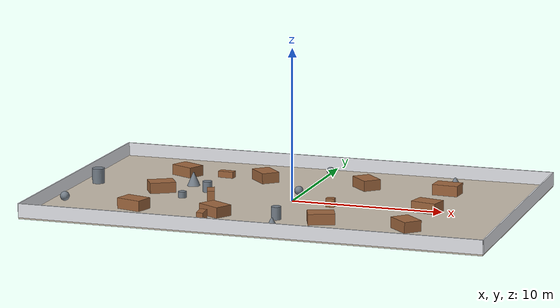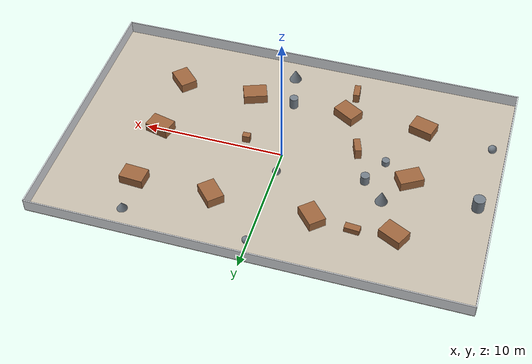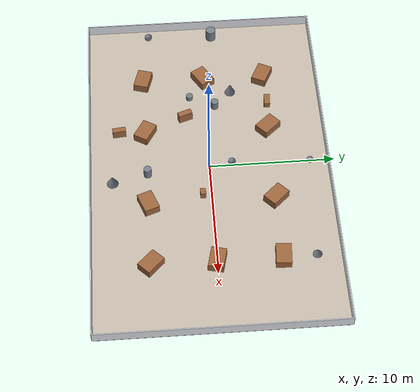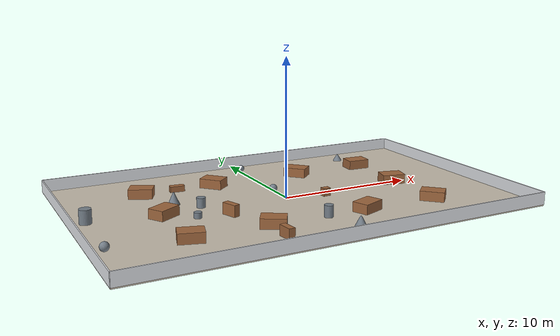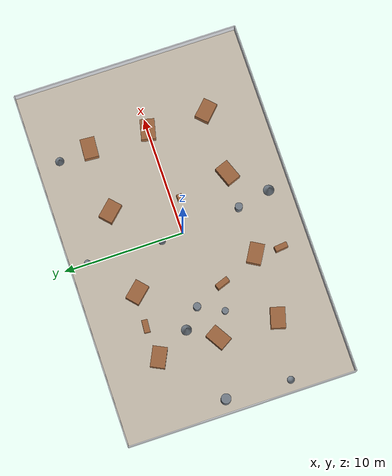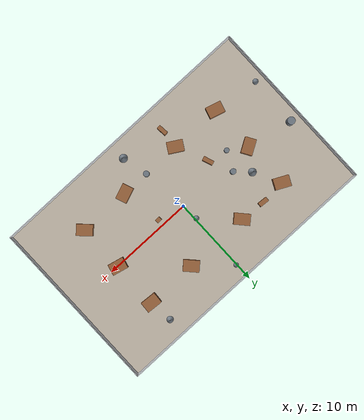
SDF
<?xml version='1.0' encoding='utf-8'?>
<sdf version="1.7">
  <world name="flat_5">
    <gravity>0 0 -9.8</gravity>
    <plugin name="gazebo_ros_state" filename="libgazebo_ros_state.so">
      <ros>
        <namespace>/gazebo</namespace>
      </ros>
    </plugin>
    <physics name="ode_physics" type="ode">
      <max_step_size>0.001</max_step_size>
      <real_time_factor>1</real_time_factor>
      <real_time_update_rate>1000</real_time_update_rate>
      <ode>
        <solver>
          <type>quick</type>
          <iters>150</iters>
          <sor>1.3</sor>
        </solver>
        <constraints>
          <cfm>0</cfm>
          <erp>0.2</erp>
          <contact_max_correcting_vel>0.2</contact_max_correcting_vel>
          <contact_surface_layer>0.001</contact_surface_layer>
        </constraints>
      </ode>
    </physics>
    <light name="sun" type="directional">
      <pose>0 0 28 0 0 0</pose>
      <diffuse>0.92 0.91 0.88 1</diffuse>
      <specular>0.18 0.18 0.16 1</specular>
      <direction>-0.35 -0.28 -0.9</direction>
      <cast_shadows>true</cast_shadows>
    </light>
    <light name="fill" type="point">
      <pose>0 0 6 0 0 0</pose>
      <diffuse>0.35 0.36 0.34 1</diffuse>
      <specular>0.02 0.02 0.02 1</specular>
      <cast_shadows>false</cast_shadows>
      <attenuation>
        <range>80</range>
        <constant>0.5</constant>
        <linear>0.02</linear>
      </attenuation>
    </light>
    <scene>
      <ambient>0.50 0.49 0.47 1</ambient>
      <background>0.80 0.82 0.86 1</background>
    </scene>
    <gui fullscreen="false">
      <camera name="user_camera">
        <pose>21 -17.1 25.5 0 0.65 2.2</pose>
        <view_controller>orbit</view_controller>
      </camera>
    </gui>
    <model name="flat_5_structure">
      <static>true</static>
      <link name="structure">
        <collision name="floor_collision">
          <pose>0 0 -0.05 0 0 0</pose>
          <geometry>
            <box>
              <size>30 19 0.1</size>
            </box>
          </geometry>
          <max_contacts>40</max_contacts>
          <surface>
            <friction>
              <ode>
                <mu>2</mu>
                <mu2>2</mu2>
              </ode>
            </friction>
            <contact>
              <ode>
                <kp>1e7</kp>
                <kd>1000</kd>
                <max_vel>0.1</max_vel>
                <min_depth>0.001</min_depth>
              </ode>
            </contact>
          </surface>
        </collision>
        <visual name="floor_visual">
          <pose>0 0 -0.05 0 0 0</pose>
          <geometry>
            <box>
              <size>30 19 0.1</size>
            </box>
          </geometry>
          <material>
            <ambient>0.78 0.74 0.68 1</ambient>
            <diffuse>0.78 0.74 0.68 1</diffuse>
          </material>
        </visual>
        <collision name="machine_0_0_collision">
          <pose>-9 -5 0.35 0 0 -0.281628888</pose>
          <geometry>
            <box>
              <size>1.7 1.2 0.7</size>
            </box>
          </geometry>
          <max_contacts>40</max_contacts>
          <surface>
            <friction>
              <ode>
                <mu>2</mu>
                <mu2>2</mu2>
              </ode>
            </friction>
            <contact>
              <ode>
                <kp>1e7</kp>
                <kd>1000</kd>
                <max_vel>0.1</max_vel>
                <min_depth>0.001</min_depth>
              </ode>
            </contact>
          </surface>
        </collision>
        <visual name="machine_0_0_visual">
          <pose>-9 -5 0.35 0 0 -0.281628888</pose>
          <geometry>
            <box>
              <size>1.7 1.2 0.7</size>
            </box>
          </geometry>
          <material>
            <ambient>0.62 0.40 0.24 1</ambient>
            <diffuse>0.62 0.40 0.24 1</diffuse>
          </material>
        </visual>
        <collision name="machine_0_1_collision">
          <pose>-3.5 -5 0.35 0 0 -0.529638505</pose>
          <geometry>
            <box>
              <size>1.7 1.2 0.7</size>
            </box>
          </geometry>
          <max_contacts>40</max_contacts>
          <surface>
            <friction>
              <ode>
                <mu>2</mu>
                <mu2>2</mu2>
              </ode>
            </friction>
            <contact>
              <ode>
                <kp>1e7</kp>
                <kd>1000</kd>
                <max_vel>0.1</max_vel>
                <min_depth>0.001</min_depth>
              </ode>
            </contact>
          </surface>
        </collision>
        <visual name="machine_0_1_visual">
          <pose>-3.5 -5 0.35 0 0 -0.529638505</pose>
          <geometry>
            <box>
              <size>1.7 1.2 0.7</size>
            </box>
          </geometry>
          <material>
            <ambient>0.62 0.40 0.24 1</ambient>
            <diffuse>0.62 0.40 0.24 1</diffuse>
          </material>
        </visual>
        <collision name="machine_0_2_collision">
          <pose>3.5 -5 0.35 0 0 0.3639632</pose>
          <geometry>
            <box>
              <size>1.7 1.2 0.7</size>
            </box>
          </geometry>
          <max_contacts>40</max_contacts>
          <surface>
            <friction>
              <ode>
                <mu>2</mu>
                <mu2>2</mu2>
              </ode>
            </friction>
            <contact>
              <ode>
                <kp>1e7</kp>
                <kd>1000</kd>
                <max_vel>0.1</max_vel>
                <min_depth>0.001</min_depth>
              </ode>
            </contact>
          </surface>
        </collision>
        <visual name="machine_0_2_visual">
          <pose>3.5 -5 0.35 0 0 0.3639632</pose>
          <geometry>
            <box>
              <size>1.7 1.2 0.7</size>
            </box>
          </geometry>
          <material>
            <ambient>0.62 0.40 0.24 1</ambient>
            <diffuse>0.62 0.40 0.24 1</diffuse>
          </material>
        </visual>
        <collision name="machine_0_3_collision">
          <pose>9 -5 0.35 0 0 -0.780838371</pose>
          <geometry>
            <box>
              <size>1.7 1.2 0.7</size>
            </box>
          </geometry>
          <max_contacts>40</max_contacts>
          <surface>
            <friction>
              <ode>
                <mu>2</mu>
                <mu2>2</mu2>
              </ode>
            </friction>
            <contact>
              <ode>
                <kp>1e7</kp>
                <kd>1000</kd>
                <max_vel>0.1</max_vel>
                <min_depth>0.001</min_depth>
              </ode>
            </contact>
          </surface>
        </collision>
        <visual name="machine_0_3_visual">
          <pose>9 -5 0.35 0 0 -0.780838371</pose>
          <geometry>
            <box>
              <size>1.7 1.2 0.7</size>
            </box>
          </geometry>
          <material>
            <ambient>0.62 0.40 0.24 1</ambient>
            <diffuse>0.62 0.40 0.24 1</diffuse>
          </material>
        </visual>
        <collision name="machine_1_0_collision">
          <pose>-9 0 0.35 0 0 0.544453973</pose>
          <geometry>
            <box>
              <size>1.7 1.2 0.7</size>
            </box>
          </geometry>
          <max_contacts>40</max_contacts>
          <surface>
            <friction>
              <ode>
                <mu>2</mu>
                <mu2>2</mu2>
              </ode>
            </friction>
            <contact>
              <ode>
                <kp>1e7</kp>
                <kd>1000</kd>
                <max_vel>0.1</max_vel>
                <min_depth>0.001</min_depth>
              </ode>
            </contact>
          </surface>
        </collision>
        <visual name="machine_1_0_visual">
          <pose>-9 0 0.35 0 0 0.544453973</pose>
          <geometry>
            <box>
              <size>1.7 1.2 0.7</size>
            </box>
          </geometry>
          <material>
            <ambient>0.62 0.40 0.24 1</ambient>
            <diffuse>0.62 0.40 0.24 1</diffuse>
          </material>
        </visual>
        <collision name="machine_1_3_collision">
          <pose>9 0 0.35 0 0 -0.232461349</pose>
          <geometry>
            <box>
              <size>1.7 1.2 0.7</size>
            </box>
          </geometry>
          <max_contacts>40</max_contacts>
          <surface>
            <friction>
              <ode>
                <mu>2</mu>
                <mu2>2</mu2>
              </ode>
            </friction>
            <contact>
              <ode>
                <kp>1e7</kp>
                <kd>1000</kd>
                <max_vel>0.1</max_vel>
                <min_depth>0.001</min_depth>
              </ode>
            </contact>
          </surface>
        </collision>
        <visual name="machine_1_3_visual">
          <pose>9 0 0.35 0 0 -0.232461349</pose>
          <geometry>
            <box>
              <size>1.7 1.2 0.7</size>
            </box>
          </geometry>
          <material>
            <ambient>0.62 0.40 0.24 1</ambient>
            <diffuse>0.62 0.40 0.24 1</diffuse>
          </material>
        </visual>
        <collision name="machine_2_0_collision">
          <pose>-9 5 0.35 0 0 -0.45611308</pose>
          <geometry>
            <box>
              <size>1.7 1.2 0.7</size>
            </box>
          </geometry>
          <max_contacts>40</max_contacts>
          <surface>
            <friction>
              <ode>
                <mu>2</mu>
                <mu2>2</mu2>
              </ode>
            </friction>
            <contact>
              <ode>
                <kp>1e7</kp>
                <kd>1000</kd>
                <max_vel>0.1</max_vel>
                <min_depth>0.001</min_depth>
              </ode>
            </contact>
          </surface>
        </collision>
        <visual name="machine_2_0_visual">
          <pose>-9 5 0.35 0 0 -0.45611308</pose>
          <geometry>
            <box>
              <size>1.7 1.2 0.7</size>
            </box>
          </geometry>
          <material>
            <ambient>0.62 0.40 0.24 1</ambient>
            <diffuse>0.62 0.40 0.24 1</diffuse>
          </material>
        </visual>
        <collision name="machine_2_1_collision">
          <pose>-3.5 5 0.35 0 0 -0.837270142</pose>
          <geometry>
            <box>
              <size>1.7 1.2 0.7</size>
            </box>
          </geometry>
          <max_contacts>40</max_contacts>
          <surface>
            <friction>
              <ode>
                <mu>2</mu>
                <mu2>2</mu2>
              </ode>
            </friction>
            <contact>
              <ode>
                <kp>1e7</kp>
                <kd>1000</kd>
                <max_vel>0.1</max_vel>
                <min_depth>0.001</min_depth>
              </ode>
            </contact>
          </surface>
        </collision>
        <visual name="machine_2_1_visual">
          <pose>-3.5 5 0.35 0 0 -0.837270142</pose>
          <geometry>
            <box>
              <size>1.7 1.2 0.7</size>
            </box>
          </geometry>
          <material>
            <ambient>0.62 0.40 0.24 1</ambient>
            <diffuse>0.62 0.40 0.24 1</diffuse>
          </material>
        </visual>
        <collision name="machine_2_2_collision">
          <pose>3.5 5 0.35 0 0 -0.818702615</pose>
          <geometry>
            <box>
              <size>1.7 1.2 0.7</size>
            </box>
          </geometry>
          <max_contacts>40</max_contacts>
          <surface>
            <friction>
              <ode>
                <mu>2</mu>
                <mu2>2</mu2>
              </ode>
            </friction>
            <contact>
              <ode>
                <kp>1e7</kp>
                <kd>1000</kd>
                <max_vel>0.1</max_vel>
                <min_depth>0.001</min_depth>
              </ode>
            </contact>
          </surface>
        </collision>
        <visual name="machine_2_2_visual">
          <pose>3.5 5 0.35 0 0 -0.818702615</pose>
          <geometry>
            <box>
              <size>1.7 1.2 0.7</size>
            </box>
          </geometry>
          <material>
            <ambient>0.62 0.40 0.24 1</ambient>
            <diffuse>0.62 0.40 0.24 1</diffuse>
          </material>
        </visual>
        <collision name="machine_2_3_collision">
          <pose>9 5 0.35 0 0 -0.0648279418</pose>
          <geometry>
            <box>
              <size>1.7 1.2 0.7</size>
            </box>
          </geometry>
          <max_contacts>40</max_contacts>
          <surface>
            <friction>
              <ode>
                <mu>2</mu>
                <mu2>2</mu2>
              </ode>
            </friction>
            <contact>
              <ode>
                <kp>1e7</kp>
                <kd>1000</kd>
                <max_vel>0.1</max_vel>
                <min_depth>0.001</min_depth>
              </ode>
            </contact>
          </surface>
        </collision>
        <visual name="machine_2_3_visual">
          <pose>9 5 0.35 0 0 -0.0648279418</pose>
          <geometry>
            <box>
              <size>1.7 1.2 0.7</size>
            </box>
          </geometry>
          <material>
            <ambient>0.62 0.40 0.24 1</ambient>
            <diffuse>0.62 0.40 0.24 1</diffuse>
          </material>
        </visual>
        <collision name="boundary_0_collision">
          <pose>0 -9.5 0.45 0 0 0</pose>
          <geometry>
            <box>
              <size>30 0.08 0.9</size>
            </box>
          </geometry>
          <max_contacts>40</max_contacts>
          <surface>
            <friction>
              <ode>
                <mu>2</mu>
                <mu2>2</mu2>
              </ode>
            </friction>
            <contact>
              <ode>
                <kp>1e7</kp>
                <kd>1000</kd>
                <max_vel>0.1</max_vel>
                <min_depth>0.001</min_depth>
              </ode>
            </contact>
          </surface>
        </collision>
        <visual name="boundary_0_visual">
          <pose>0 -9.5 0.45 0 0 0</pose>
          <geometry>
            <box>
              <size>30 0.08 0.9</size>
            </box>
          </geometry>
          <material>
            <ambient>0.90 0.91 0.93 1</ambient>
            <diffuse>0.90 0.91 0.93 1</diffuse>
          </material>
        </visual>
        <collision name="boundary_1_collision">
          <pose>15 0 0.45 0 0 1.57079633</pose>
          <geometry>
            <box>
              <size>19 0.08 0.9</size>
            </box>
          </geometry>
          <max_contacts>40</max_contacts>
          <surface>
            <friction>
              <ode>
                <mu>2</mu>
                <mu2>2</mu2>
              </ode>
            </friction>
            <contact>
              <ode>
                <kp>1e7</kp>
                <kd>1000</kd>
                <max_vel>0.1</max_vel>
                <min_depth>0.001</min_depth>
              </ode>
            </contact>
          </surface>
        </collision>
        <visual name="boundary_1_visual">
          <pose>15 0 0.45 0 0 1.57079633</pose>
          <geometry>
            <box>
              <size>19 0.08 0.9</size>
            </box>
          </geometry>
          <material>
            <ambient>0.90 0.91 0.93 1</ambient>
            <diffuse>0.90 0.91 0.93 1</diffuse>
          </material>
        </visual>
        <collision name="boundary_2_collision">
          <pose>0 9.5 0.45 0 0 3.14159265</pose>
          <geometry>
            <box>
              <size>30 0.08 0.9</size>
            </box>
          </geometry>
          <max_contacts>40</max_contacts>
          <surface>
            <friction>
              <ode>
                <mu>2</mu>
                <mu2>2</mu2>
              </ode>
            </friction>
            <contact>
              <ode>
                <kp>1e7</kp>
                <kd>1000</kd>
                <max_vel>0.1</max_vel>
                <min_depth>0.001</min_depth>
              </ode>
            </contact>
          </surface>
        </collision>
        <visual name="boundary_2_visual">
          <pose>0 9.5 0.45 0 0 3.14159265</pose>
          <geometry>
            <box>
              <size>30 0.08 0.9</size>
            </box>
          </geometry>
          <material>
            <ambient>0.90 0.91 0.93 1</ambient>
            <diffuse>0.90 0.91 0.93 1</diffuse>
          </material>
        </visual>
        <collision name="boundary_3_collision">
          <pose>-15 0 0.45 0 0 -1.57079633</pose>
          <geometry>
            <box>
              <size>19 0.08 0.9</size>
            </box>
          </geometry>
          <max_contacts>40</max_contacts>
          <surface>
            <friction>
              <ode>
                <mu>2</mu>
                <mu2>2</mu2>
              </ode>
            </friction>
            <contact>
              <ode>
                <kp>1e7</kp>
                <kd>1000</kd>
                <max_vel>0.1</max_vel>
                <min_depth>0.001</min_depth>
              </ode>
            </contact>
          </surface>
        </collision>
        <visual name="boundary_3_visual">
          <pose>-15 0 0.45 0 0 -1.57079633</pose>
          <geometry>
            <box>
              <size>19 0.08 0.9</size>
            </box>
          </geometry>
          <material>
            <ambient>0.90 0.91 0.93 1</ambient>
            <diffuse>0.90 0.91 0.93 1</diffuse>
          </material>
        </visual>
        <collision name="irregular_prop_0_collision">
          <pose>-4.9666903 -1.68929528 0.410471591 0 0 1.91505004</pose>
          <geometry>
            <box>
              <size>1.13967071 0.461422812 0.820943182</size>
            </box>
          </geometry>
          <max_contacts>40</max_contacts>
          <surface>
            <friction>
              <ode>
                <mu>2</mu>
                <mu2>2</mu2>
              </ode>
            </friction>
            <contact>
              <ode>
                <kp>1e7</kp>
                <kd>1000</kd>
                <max_vel>0.1</max_vel>
                <min_depth>0.001</min_depth>
              </ode>
            </contact>
          </surface>
        </collision>
        <visual name="irregular_prop_0_visual">
          <pose>-4.9666903 -1.68929528 0.410471591 0 0 1.91505004</pose>
          <geometry>
            <box>
              <size>1.13967071 0.461422812 0.820943182</size>
            </box>
          </geometry>
          <material>
            <ambient>0.62 0.40 0.24 1</ambient>
            <diffuse>0.62 0.40 0.24 1</diffuse>
          </material>
        </visual>
        <collision name="irregular_prop_1_collision">
          <pose>-6.10416655 0.82531364 0.350219221 0 0 -0.242684417</pose>
          <geometry>
            <cylinder>
              <radius>0.311122265653469</radius>
              <length>0.7004384415277649</length>
            </cylinder>
          </geometry>
          <max_contacts>40</max_contacts>
          <surface>
            <friction>
              <ode>
                <mu>2</mu>
                <mu2>2</mu2>
              </ode>
            </friction>
            <contact>
              <ode>
                <kp>1e7</kp>
                <kd>1000</kd>
                <max_vel>0.1</max_vel>
                <min_depth>0.001</min_depth>
              </ode>
            </contact>
          </surface>
        </collision>
        <visual name="irregular_prop_1_visual">
          <pose>-6.10416655 0.82531364 0.350219221 0 0 -0.242684417</pose>
          <geometry>
            <cylinder>
              <radius>0.311122265653469</radius>
              <length>0.7004384415277649</length>
            </cylinder>
          </geometry>
          <material>
            <ambient>0.46 0.50 0.54 1</ambient>
            <diffuse>0.46 0.50 0.54 1</diffuse>
          </material>
        </visual>
        <collision name="irregular_prop_2_collision">
          <pose>0.0857337343 8.04390686 0.258009043 0 0 -0.27950322</pose>
          <geometry>
            <sphere>
              <radius>0.25800904333593744</radius>
            </sphere>
          </geometry>
          <max_contacts>40</max_contacts>
          <surface>
            <friction>
              <ode>
                <mu>2</mu>
                <mu2>2</mu2>
              </ode>
            </friction>
            <contact>
              <ode>
                <kp>1e7</kp>
                <kd>1000</kd>
                <max_vel>0.1</max_vel>
                <min_depth>0.001</min_depth>
              </ode>
            </contact>
          </surface>
        </collision>
        <visual name="irregular_prop_2_visual">
          <pose>0.0857337343 8.04390686 0.258009043 0 0 -0.27950322</pose>
          <geometry>
            <sphere>
              <radius>0.25800904333593744</radius>
            </sphere>
          </geometry>
          <material>
            <ambient>0.46 0.50 0.54 1</ambient>
            <diffuse>0.46 0.50 0.54 1</diffuse>
          </material>
        </visual>
        <collision name="irregular_prop_3_collision">
          <pose>0 0 0 0 0 0</pose>
          <geometry>
            <mesh>
              <uri>3DModel/flat/surfaces/flat_5_irregular_prop_3.stl</uri>
            </mesh>
          </geometry>
          <max_contacts>40</max_contacts>
          <surface>
            <friction>
              <ode>
                <mu>8</mu>
                <mu2>8</mu2>
              </ode>
            </friction>
            <contact>
              <ode>
                <kp>1e7</kp>
                <kd>1000</kd>
                <max_vel>0.1</max_vel>
                <min_depth>0.001</min_depth>
              </ode>
            </contact>
          </surface>
        </collision>
        <visual name="irregular_prop_3_visual">
          <pose>0 0 0 0 0 0</pose>
          <geometry>
            <mesh>
              <uri>3DModel/flat/surfaces/flat_5_irregular_prop_3.stl</uri>
            </mesh>
          </geometry>
          <material>
            <ambient>0.46 0.50 0.54 1</ambient>
            <diffuse>0.46 0.50 0.54 1</diffuse>
          </material>
        </visual>
        <collision name="irregular_prop_4_collision">
          <pose>2.79872633 -0.691367938 0.284824447 0 0 0.0359924461</pose>
          <geometry>
            <box>
              <size>0.549388893 0.435297651 0.569648895</size>
            </box>
          </geometry>
          <max_contacts>40</max_contacts>
          <surface>
            <friction>
              <ode>
                <mu>2</mu>
                <mu2>2</mu2>
              </ode>
            </friction>
            <contact>
              <ode>
                <kp>1e7</kp>
                <kd>1000</kd>
                <max_vel>0.1</max_vel>
                <min_depth>0.001</min_depth>
              </ode>
            </contact>
          </surface>
        </collision>
        <visual name="irregular_prop_4_visual">
          <pose>2.79872633 -0.691367938 0.284824447 0 0 0.0359924461</pose>
          <geometry>
            <box>
              <size>0.549388893 0.435297651 0.569648895</size>
            </box>
          </geometry>
          <material>
            <ambient>0.62 0.40 0.24 1</ambient>
            <diffuse>0.62 0.40 0.24 1</diffuse>
          </material>
        </visual>
        <collision name="irregular_prop_5_collision">
          <pose>0.539143545 -4.95214019 0.41557562 0 0 1.70630345</pose>
          <geometry>
            <cylinder>
              <radius>0.31214486126279334</radius>
              <length>0.8311512393823088</length>
            </cylinder>
          </geometry>
          <max_contacts>40</max_contacts>
          <surface>
            <friction>
              <ode>
                <mu>2</mu>
                <mu2>2</mu2>
              </ode>
            </friction>
            <contact>
              <ode>
                <kp>1e7</kp>
                <kd>1000</kd>
                <max_vel>0.1</max_vel>
                <min_depth>0.001</min_depth>
              </ode>
            </contact>
          </surface>
        </collision>
        <visual name="irregular_prop_5_visual">
          <pose>0.539143545 -4.95214019 0.41557562 0 0 1.70630345</pose>
          <geometry>
            <cylinder>
              <radius>0.31214486126279334</radius>
              <length>0.8311512393823088</length>
            </cylinder>
          </geometry>
          <material>
            <ambient>0.46 0.50 0.54 1</ambient>
            <diffuse>0.46 0.50 0.54 1</diffuse>
          </material>
        </visual>
        <collision name="irregular_prop_6_collision">
          <pose>-13.9972959 -4.37351688 0.304126396 0 0 0.644946339</pose>
          <geometry>
            <sphere>
              <radius>0.30412639590588797</radius>
            </sphere>
          </geometry>
          <max_contacts>40</max_contacts>
          <surface>
            <friction>
              <ode>
                <mu>2</mu>
                <mu2>2</mu2>
              </ode>
            </friction>
            <contact>
              <ode>
                <kp>1e7</kp>
                <kd>1000</kd>
                <max_vel>0.1</max_vel>
                <min_depth>0.001</min_depth>
              </ode>
            </contact>
          </surface>
        </collision>
        <visual name="irregular_prop_6_visual">
          <pose>-13.9972959 -4.37351688 0.304126396 0 0 0.644946339</pose>
          <geometry>
            <sphere>
              <radius>0.30412639590588797</radius>
            </sphere>
          </geometry>
          <material>
            <ambient>0.46 0.50 0.54 1</ambient>
            <diffuse>0.46 0.50 0.54 1</diffuse>
          </material>
        </visual>
        <collision name="irregular_prop_7_collision">
          <pose>0 0 0 0 0 0</pose>
          <geometry>
            <mesh>
              <uri>3DModel/flat/surfaces/flat_5_irregular_prop_7.stl</uri>
            </mesh>
          </geometry>
          <max_contacts>40</max_contacts>
          <surface>
            <friction>
              <ode>
                <mu>8</mu>
                <mu2>8</mu2>
              </ode>
            </friction>
            <contact>
              <ode>
                <kp>1e7</kp>
                <kd>1000</kd>
                <max_vel>0.1</max_vel>
                <min_depth>0.001</min_depth>
              </ode>
            </contact>
          </surface>
        </collision>
        <visual name="irregular_prop_7_visual">
          <pose>0 0 0 0 0 0</pose>
          <geometry>
            <mesh>
              <uri>3DModel/flat/surfaces/flat_5_irregular_prop_7.stl</uri>
            </mesh>
          </geometry>
          <material>
            <ambient>0.46 0.50 0.54 1</ambient>
            <diffuse>0.46 0.50 0.54 1</diffuse>
          </material>
        </visual>
        <collision name="irregular_prop_8_collision">
          <pose>-6.29045362 5.19567948 0.213744906 0 0 3.07029632</pose>
          <geometry>
            <box>
              <size>1.05329016 0.487701377 0.427489813</size>
            </box>
          </geometry>
          <max_contacts>40</max_contacts>
          <surface>
            <friction>
              <ode>
                <mu>2</mu>
                <mu2>2</mu2>
              </ode>
            </friction>
            <contact>
              <ode>
                <kp>1e7</kp>
                <kd>1000</kd>
                <max_vel>0.1</max_vel>
                <min_depth>0.001</min_depth>
              </ode>
            </contact>
          </surface>
        </collision>
        <visual name="irregular_prop_8_visual">
          <pose>-6.29045362 5.19567948 0.213744906 0 0 3.07029632</pose>
          <geometry>
            <box>
              <size>1.05329016 0.487701377 0.427489813</size>
            </box>
          </geometry>
          <material>
            <ambient>0.62 0.40 0.24 1</ambient>
            <diffuse>0.62 0.40 0.24 1</diffuse>
          </material>
        </visual>
        <collision name="irregular_prop_9_collision">
          <pose>-13.8497876 1.02042867 0.496893173 0 0 -1.8310432</pose>
          <geometry>
            <cylinder>
              <radius>0.4108237161368004</radius>
              <length>0.9937863450193993</length>
            </cylinder>
          </geometry>
          <max_contacts>40</max_contacts>
          <surface>
            <friction>
              <ode>
                <mu>2</mu>
                <mu2>2</mu2>
              </ode>
            </friction>
            <contact>
              <ode>
                <kp>1e7</kp>
                <kd>1000</kd>
                <max_vel>0.1</max_vel>
                <min_depth>0.001</min_depth>
              </ode>
            </contact>
          </surface>
        </collision>
        <visual name="irregular_prop_9_visual">
          <pose>-13.8497876 1.02042867 0.496893173 0 0 -1.8310432</pose>
          <geometry>
            <cylinder>
              <radius>0.4108237161368004</radius>
              <length>0.9937863450193993</length>
            </cylinder>
          </geometry>
          <material>
            <ambient>0.46 0.50 0.54 1</ambient>
            <diffuse>0.46 0.50 0.54 1</diffuse>
          </material>
        </visual>
        <collision name="irregular_prop_10_collision">
          <pose>-0.138270364 1.80152624 0.287616886 0 0 -2.78437703</pose>
          <geometry>
            <sphere>
              <radius>0.28761688556311055</radius>
            </sphere>
          </geometry>
          <max_contacts>40</max_contacts>
          <surface>
            <friction>
              <ode>
                <mu>2</mu>
                <mu2>2</mu2>
              </ode>
            </friction>
            <contact>
              <ode>
                <kp>1e7</kp>
                <kd>1000</kd>
                <max_vel>0.1</max_vel>
                <min_depth>0.001</min_depth>
              </ode>
            </contact>
          </surface>
        </collision>
        <visual name="irregular_prop_10_visual">
          <pose>-0.138270364 1.80152624 0.287616886 0 0 -2.78437703</pose>
          <geometry>
            <sphere>
              <radius>0.28761688556311055</radius>
            </sphere>
          </geometry>
          <material>
            <ambient>0.46 0.50 0.54 1</ambient>
            <diffuse>0.46 0.50 0.54 1</diffuse>
          </material>
        </visual>
        <collision name="irregular_prop_11_collision">
          <pose>0 0 0 0 0 0</pose>
          <geometry>
            <mesh>
              <uri>3DModel/flat/surfaces/flat_5_irregular_prop_11.stl</uri>
            </mesh>
          </geometry>
          <max_contacts>40</max_contacts>
          <surface>
            <friction>
              <ode>
                <mu>8</mu>
                <mu2>8</mu2>
              </ode>
            </friction>
            <contact>
              <ode>
                <kp>1e7</kp>
                <kd>1000</kd>
                <max_vel>0.1</max_vel>
                <min_depth>0.001</min_depth>
              </ode>
            </contact>
          </surface>
        </collision>
        <visual name="irregular_prop_11_visual">
          <pose>0 0 0 0 0 0</pose>
          <geometry>
            <mesh>
              <uri>3DModel/flat/surfaces/flat_5_irregular_prop_11.stl</uri>
            </mesh>
          </geometry>
          <material>
            <ambient>0.46 0.50 0.54 1</ambient>
            <diffuse>0.46 0.50 0.54 1</diffuse>
          </material>
        </visual>
        <collision name="irregular_prop_12_collision">
          <pose>-3.64704245 -7.10936152 0.361832629 0 0 1.67427279</pose>
          <geometry>
            <box>
              <size>1.05963512 0.441271842 0.723665257</size>
            </box>
          </geometry>
          <max_contacts>40</max_contacts>
          <surface>
            <friction>
              <ode>
                <mu>2</mu>
                <mu2>2</mu2>
              </ode>
            </friction>
            <contact>
              <ode>
                <kp>1e7</kp>
                <kd>1000</kd>
                <max_vel>0.1</max_vel>
                <min_depth>0.001</min_depth>
              </ode>
            </contact>
          </surface>
        </collision>
        <visual name="irregular_prop_12_visual">
          <pose>-3.64704245 -7.10936152 0.361832629 0 0 1.67427279</pose>
          <geometry>
            <box>
              <size>1.05963512 0.441271842 0.723665257</size>
            </box>
          </geometry>
          <material>
            <ambient>0.62 0.40 0.24 1</ambient>
            <diffuse>0.62 0.40 0.24 1</diffuse>
          </material>
        </visual>
        <collision name="irregular_prop_13_collision">
          <pose>-7.10807544 -1.20693498 0.201341963 0 0 0.589721352</pose>
          <geometry>
            <cylinder>
              <radius>0.2715370049784907</radius>
              <length>0.4026839254403025</length>
            </cylinder>
          </geometry>
          <max_contacts>40</max_contacts>
          <surface>
            <friction>
              <ode>
                <mu>2</mu>
                <mu2>2</mu2>
              </ode>
            </friction>
            <contact>
              <ode>
                <kp>1e7</kp>
                <kd>1000</kd>
                <max_vel>0.1</max_vel>
                <min_depth>0.001</min_depth>
              </ode>
            </contact>
          </surface>
        </collision>
        <visual name="irregular_prop_13_visual">
          <pose>-7.10807544 -1.20693498 0.201341963 0 0 0.589721352</pose>
          <geometry>
            <cylinder>
              <radius>0.2715370049784907</radius>
              <length>0.4026839254403025</length>
            </cylinder>
          </geometry>
          <material>
            <ambient>0.46 0.50 0.54 1</ambient>
            <diffuse>0.46 0.50 0.54 1</diffuse>
          </material>
        </visual>
      </link>
    </model>
  </world>
</sdf>
